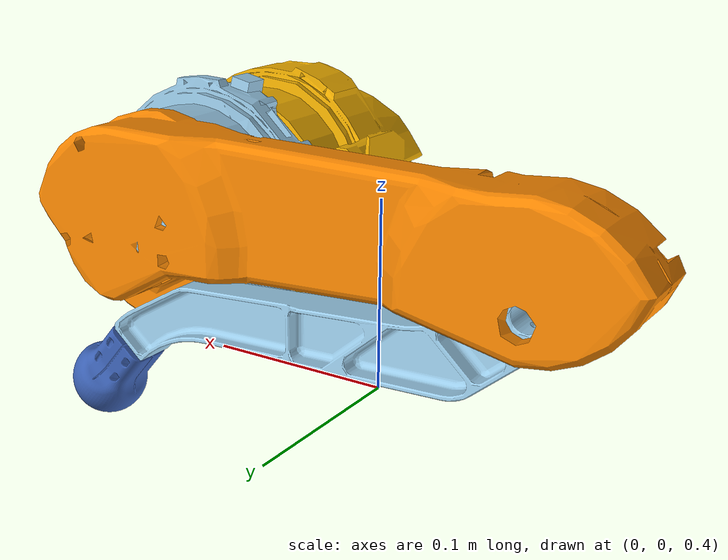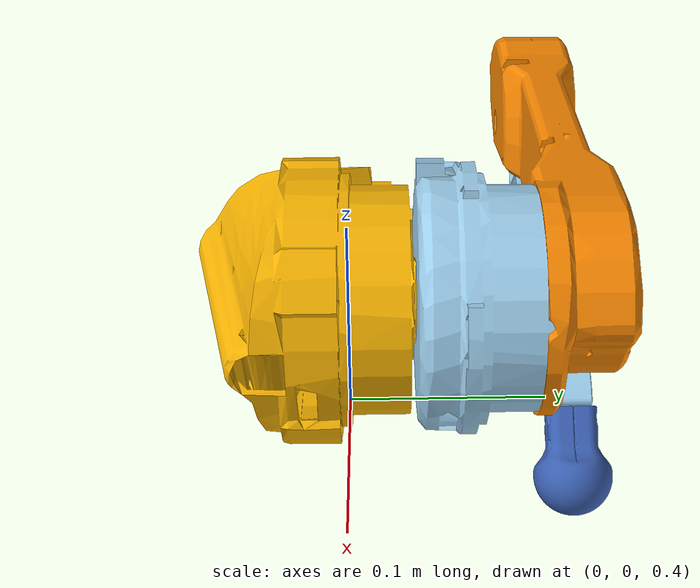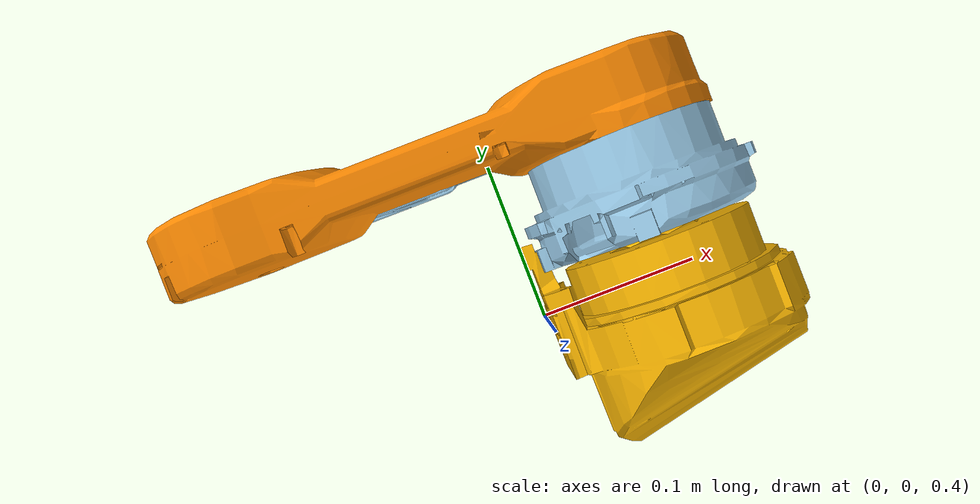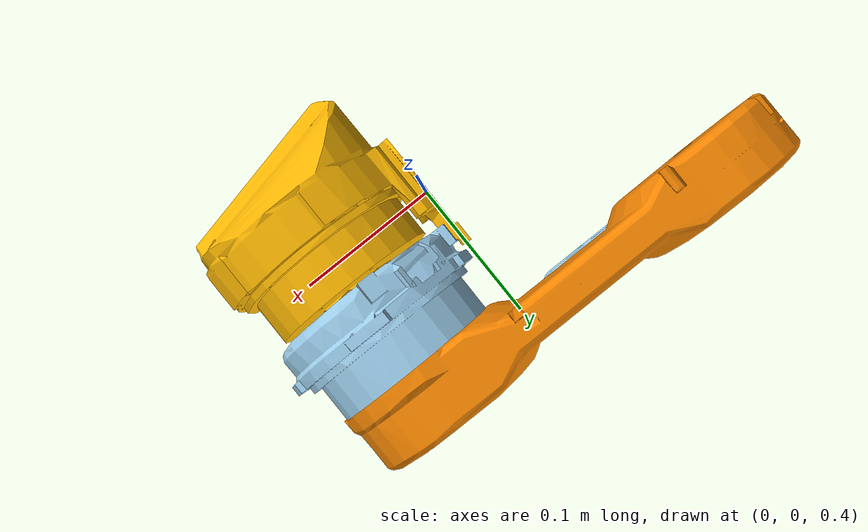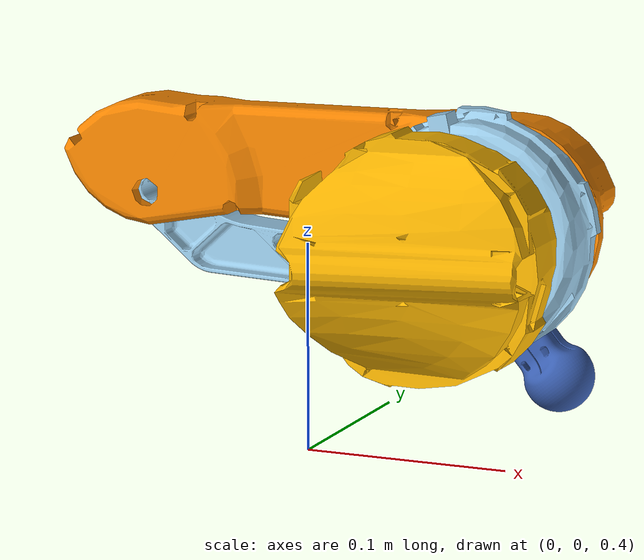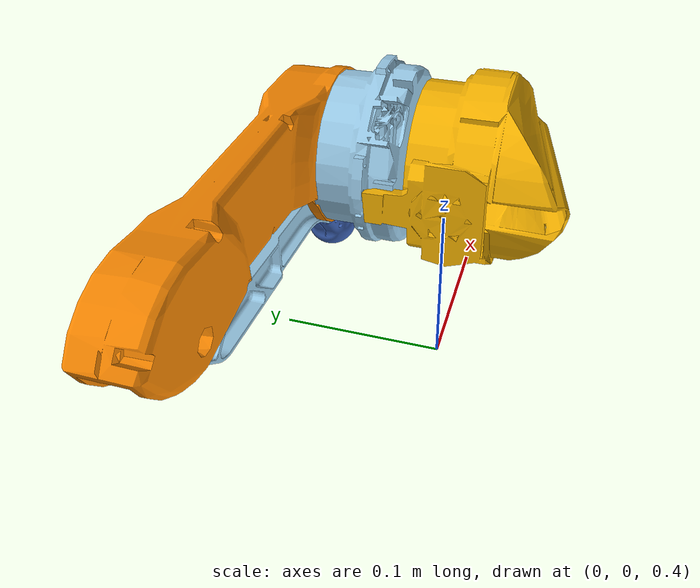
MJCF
<mujoco model="barkour_leg">
  <compiler angle="radian" autolimits="true"/>

  <option iterations="1" ls_iterations="5">
    <flag eulerdamp="disable"/>
  </option>

  <default>
    <default class="bkvb">
      <geom contype="0" conaffinity="0" type="mesh"/>
      <default class="bkvb/collision">
        <geom group="3" contype="0" conaffinity="1"/>
        <default class="bkvb/collision/foot">
          <geom type="sphere" size="0.0175" pos="-0.21425 -0.0779806 0" rgba="1 0 0 1" solimp="0.015 1 0.031" friction="0.8 0.02 0.01"/>
        </default>
      </default>

      <!-- hide sites by default -->
      <site group="5"/>
      <default class="bkvb/vicon">
        <!-- show vicon markers with a small sphere -->
        <site group="0"/>
      </default>

      <joint damping="0.024" armature="0.011"/>
      <general forcerange="-18 18" biastype="affine" gainprm="50 0 0" biasprm="0 -50 -0.5"/>
      <default class="bkvb/abduction">
        <joint range="-1.0472 1.0472"/>
        <general ctrlrange="-0.9472 0.9472"/>
        <geom rgba="0.980392 0.713726 0.00392157 1" mesh="abduction"/>
      </default>
      <default class="bkvb/hip">
        <joint range="-1.54706 3.02902"/>
        <general ctrlrange="-1.44706 2.92902"/>
      </default>
      <default class="bkvb/knee">
        <joint range="0 2.44346"/>
        <general ctrlrange="0.1 2.34346"/>
      </default>
      <default class="bkvb/foot">
        <site pos="-0.21425 -0.0779806 0" quat="0.664463 0.664463 -0.241845 -0.241845"/>
        <geom rgba="0.231373 0.380392 0.705882 1" mesh="foot"/>
      </default>
      <default class="bkvb/lower_leg">
        <geom rgba="0.615686 0.811765 0.929412 1" mesh="lower_leg"/>
      </default>
      <default class="bkvb/upper_leg">
        <geom rgba="0.615686 0.811765 0.929412 1" mesh="upper_leg"/>
      </default>
      <default class="bkvb/upper_leg_left">
        <geom rgba="0.972549 0.529412 0.00392157 1" mesh="upper_leg_left"/>
      </default>
      <default class="bkvb/upper_leg_right">
        <geom rgba="0.513726 0.737255 0.407843 1" mesh="upper_leg_right"/>
      </default>
      <default class="bkvb/torso">
        <geom rgba="0.8 0.74902 0.913725 1"/>
      </default>
    </default>
  </default>

  <asset>
    <mesh name="camera_cover" file="assets/camera_cover.stl"/>
    <mesh name="neck" file="assets/neck.stl"/>
    <mesh name="intel_realsense_depth_camera_d435" file="assets/intel_realsense_depth_camera_d435.stl"/>
    <mesh name="handle" file="assets/handle.stl"/>
    <mesh name="torso" file="assets/torso.stl"/>
    <mesh name="abduction" file="assets/abduction.stl"/>
    <mesh name="upper_leg" file="assets/upper_leg.stl"/>
    <mesh name="upper_leg_left" file="assets/upper_leg_left.stl"/>
    <mesh name="upper_leg_right" file="assets/upper_leg_right.stl"/>
    <mesh name="lower_leg" file="assets/lower_leg.stl"/>
    <mesh name="foot" file="assets/foot.stl"/>
  </asset>

  <worldbody>
    <body name="fixed_base" pos="0.0 0.0 0.5" childclass="bkvb">
      <body name="leg_front_left" pos="0 0 0" quat="1 -1 -1 1">
        <inertial pos="0.00547726 -0.000288034 -0.0602191" quat="0.999837 0.0103892 -0.0143715 -0.00325656" mass="0.787"
          diaginertia="0.00143831 0.00117023 0.00100011"/>
        <joint name="abduction_front_left" class="bkvb/abduction"/>
        <geom class="bkvb/abduction" pos="0 0.000111373 0.0029" quat="1 1 0 0"/>
        <body name="upper_leg_front_left" pos="0.03085 0 -0.065" quat="0 -1 0 1">
          <inertial pos="-0.0241397 0.00402429 -0.0453038" quat="0.0673193 0.647966 -0.00518142 0.75867" mass="1.155"
            diaginertia="0.00562022 0.00519471 0.0012633"/>
          <joint name="hip_front_left" class="bkvb/hip"/>
          <geom class="bkvb/upper_leg" pos="0.0679 0.000111373 0.03085" quat="1 1 1 -1"/>
          <geom class="bkvb/upper_leg_left" pos="0 0 -0.05075" quat="0 0 1 0"/>
          <body name="lower_leg_front_left" pos="-0.19 0 -0.069575" quat="0 0 1 0">
            <inertial pos="-0.0895493 -0.0301957 -3.02082e-08" quat="-0.101465 0.699789 0.101465 0.699789"
              mass="0.171238" diaginertia="0.00137406 0.00135746 3.05521e-05"/>
            <joint name="knee_front_left" class="bkvb/knee"/>
            <geom class="bkvb/foot" pos="-0.0649838 0.178542 0" quat="0.819152 0 0 -0.573576"/>
            <geom class="bkvb/lower_leg" pos="-0.0649838 0.178542 0" quat="0.819152 0 0 -0.573576"/>
            <geom class="bkvb/collision/foot"/>
            <site name="foot_front_left" class="bkvb/foot"/>
          </body>
        </body>
      </body>
    </body>
  </worldbody>

  <actuator>
    <general name="abduction_front_left" class="bkvb/abduction" joint="abduction_front_left"/>
    <general name="hip_front_left" class="bkvb/hip" joint="hip_front_left"/>
    <general name="knee_front_left" class="bkvb/knee" joint="knee_front_left"/>
  </actuator>

  <sensor>
    <jointpos joint="abduction_front_left" name="abduction_front_left_pos"/>
    <jointpos joint="hip_front_left" name="hip_front_left_pos"/>
    <jointpos joint="knee_front_left" name="knee_front_left_pos"/>
  </sensor>
</mujoco>
